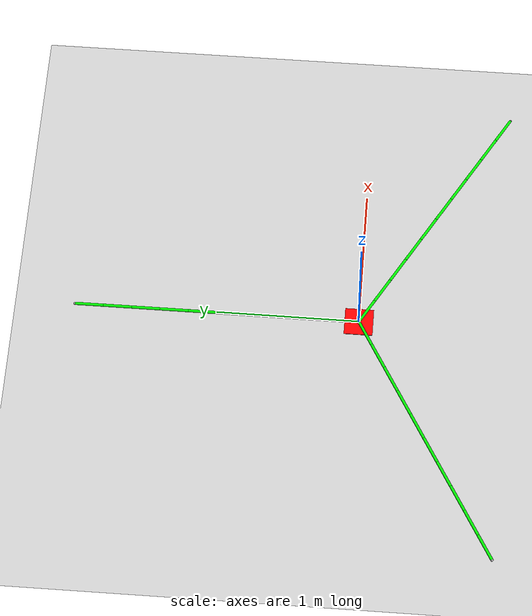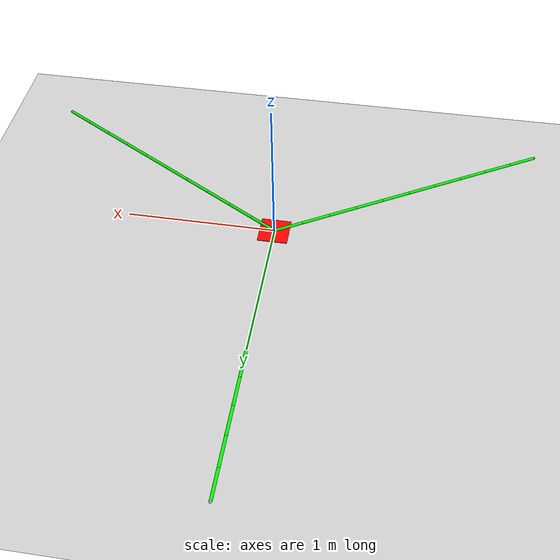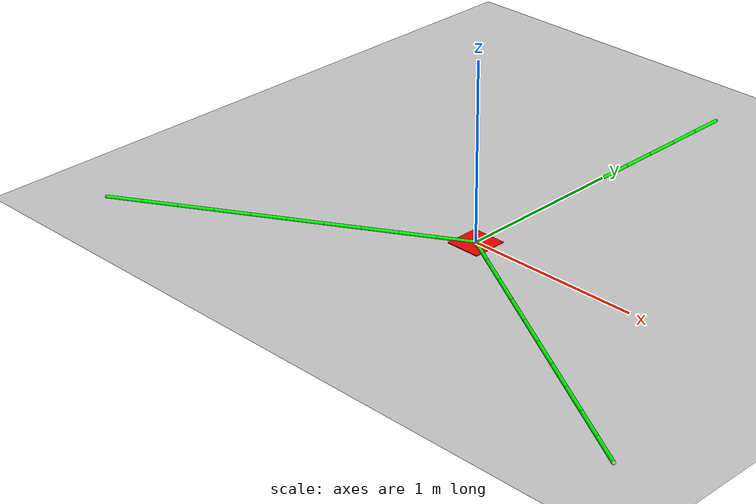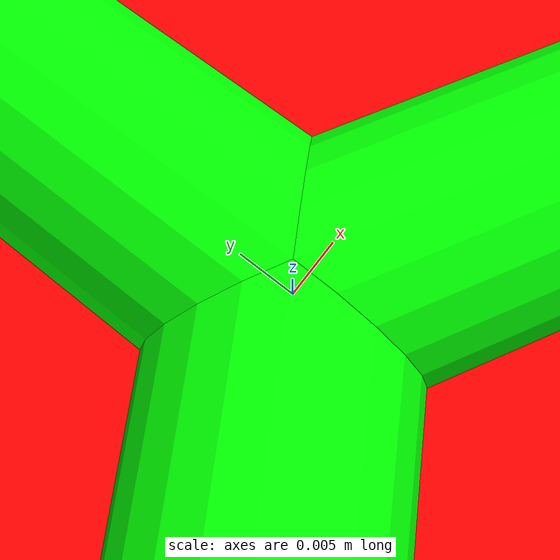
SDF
<sdf version="1.9">
 <world name="ideal_3dof_mqsls">
  <physics type="ode">
   <max_step_size>0.01</max_step_size>
   <real_time_factor>1.0</real_time_factor>
   <real_time_update_rate>250</real_time_update_rate>
  </physics>
  <plugin name="gz::sim::systems::Physics" filename="gz-sim-physics-system"/>
  <plugin name="gz::sim::systems::UserCommands" filename="gz-sim-user-commands-system"/>
  <plugin name="gz::sim::systems::SceneBroadcaster" filename="gz-sim-scene-broadcaster-system"/>
  <plugin name="gz::sim::systems::Contact" filename="gz-sim-contact-system"/>
  <plugin name="gz::sim::systems::Imu" filename="gz-sim-imu-system"/>
  <plugin name="gz::sim::systems::AirPressure" filename="gz-sim-air-pressure-system"/>
  <plugin name="gz::sim::systems::Sensors" filename="gz-sim-sensors-system">
   <render_engine>ogre2</render_engine>
  </plugin>
  <gravity>0 0 -9.8</gravity>
  <magnetic_field>6e-06 2.3e-05 -4.2e-05</magnetic_field>
  <atmosphere type="adiabatic"/>
  <scene>
   <grid>false</grid>
   <ambient>0.4 0.4 0.4 1</ambient>
   <background>0.7 0.7 0.7 1</background>
   <shadows>true</shadows>
  </scene>
  <model name="ground_plane">
   <static>true</static>
   <link name="link">
    <collision name="collision">
     <geometry><plane><normal>0 0 1</normal><size>1 1</size></plane></geometry>
    </collision>
    <visual name="visual">
     <geometry><plane><normal>0 0 1</normal><size>100 100</size></plane></geometry>
     <material>
      <ambient>0.8 0.8 0.8 1</ambient>
      <diffuse>0.8 0.8 0.8 1</diffuse>
      <specular>0.8 0.8 0.8 1</specular>
     </material>
    </visual>
    <inertial>
     <mass>1</mass>
     <inertia><ixx>1</ixx><ixy>0</ixy><ixz>0</ixz><iyy>1</iyy><iyz>0</iyz><izz>1</izz></inertia>
    </inertial>
   </link>
  </model>
  <plugin filename="virtual_wrench_plugin" name="virtual_wrench_plugin"/>
  <wind><linear_velocity>0 0 0</linear_velocity></wind>
  <plugin filename="gz-sim-wind-effects-system" name="gz::sim::systems::WindEffects">
   <force_approximation_scaling_factor>1</force_approximation_scaling_factor>
   <horizontal>
    <magnitude>
     <time_for_rise>10</time_for_rise>
     <sin><amplitude_percent>0.05</amplitude_percent><period>60</period></sin>
     <noise type="gaussian"><mean>0</mean><stddev>0.0002</stddev></noise>
    </magnitude>
    <direction>
     <time_for_rise>30</time_for_rise>
     <sin><amplitude>5</amplitude><period>20</period></sin>
     <noise type="gaussian"><mean>0</mean><stddev>0.03</stddev></noise>
    </direction>
   </horizontal>
   <vertical><noise type="gaussian"><mean>0</mean><stddev>0.03</stddev></noise></vertical>
  </plugin>
  <include><name>payload</name><uri>model://payload</uri></include>
  <include><name>rope_1</name><pose>0 0 0 0 0 1.570796326794897</pose><uri>model://rope</uri></include>
  <joint name="uav_joint1" type="fixed">
   <child>x500_1::base_link</child>
   <parent>rope_1::end_link</parent>
  </joint>
  <joint name="payload_joint1" type="fixed">
   <child>rope_1::begin_link</child>
   <parent>payload::base_link</parent>
  </joint>
  <include><name>rope_2</name><pose>0 0 0 0 0 -0.523598775598299</pose><uri>model://rope</uri></include>
  <include><name>rope_3</name><pose>0 0 0 0 0 -2.617993877991494</pose><uri>model://rope</uri></include>
  <joint name="uav_joint2" type="fixed">
   <child>x500_2::base_link</child>
   <parent>rope_2::end_link</parent>
  </joint>
  <joint name="uav_joint3" type="fixed">
   <child>x500_3::base_link</child>
   <parent>rope_3::end_link</parent>
  </joint>
  <joint name="payload_joint2" type="fixed">
   <child>rope_2::begin_link</child>
   <parent>payload::base_link</parent>
  </joint>
  <joint name="payload_joint3" type="fixed">
   <child>rope_3::begin_link</child>
   <parent>payload::base_link</parent>
  </joint>
  <light name="sunUTC" type="directional">
   <pose>0 0 500 0 -0 0</pose>
   <intensity>1</intensity>
   <direction>0.001 0.625 -0.78</direction>
   <diffuse>0.904 0.904 0.904 1</diffuse>
   <specular>0.271 0.271 0.271 1</specular>
   <attenuation><range>2000</range><linear>0</linear><constant>1</constant><quadratic>0</quadratic></attenuation>
   <spot><inner_angle>0</inner_angle><outer_angle>0</outer_angle><falloff>0</falloff></spot>
  </light>
 </world>
</sdf>

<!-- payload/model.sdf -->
<sdf version='1.9'>
  <model name="payload">
    <enable_wind>true</enable_wind>
    <link name="base_link">
      <pose>0 0 -0.1 0 0 0</pose>
      <collision name="base_link_collision">
        <geometry>
          <box>
          <size>0.2 0.2 0.2</size>
          </box>
        </geometry>
      </collision>
      <visual name="base_link_visual">
        <geometry>
          <box>
          <size>0.2 0.2 0.2</size>
          </box>
        </geometry>
        <material>
          <ambient>1 0 0 1</ambient> <!-- red -->
          <diffuse>1 0 0 1</diffuse>
          <specular>1 0 0 1</specular>
        </material>
      </visual>
      <inertial>
        <mass>0.5</mass> <!-- kg -->
        <inertia>
          <ixx>1/6*(0.2*0.2)</ixx>
          <iyy>1/6*(0.2*0.2)</iyy>
          <izz>1/6*(0.2*0.2)</izz>
        </inertia>
      </inertial>
    </link>
  </model>
</sdf>

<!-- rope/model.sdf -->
<sdf version='1.9'>
  <model name='rope'>
    <enable_wind>true</enable_wind>
    <static>false</static>
    <link name='begin_link'>
      <pose>0 0 0 0 0 0</pose>
      <inertial>
        <mass>0.001</mass>
        <inertia>
          <ixx>4.000000000000001e-08</ixx>
          <iyy>4.000000000000001e-08</iyy>
          <izz>4.000000000000001e-08</izz>
        </inertia>
      </inertial>
       <collision name='begin_link_collision'>
        <geometry>
          <sphere>
            <radius>0.01</radius>
          </sphere>
        </geometry>
      </collision>
      <visual name='begin_link_visual'>
        <geometry>
          <sphere>
            <radius>0.01</radius>
          </sphere>
        </geometry>
      </visual>
    </link>
    <link name='link_0'>
      <pose>0.1 0 0 0 1.570796326794896558 0</pose>
      <inertial>
        <mass>0.001</mass>
        <inertia>
          <ixx>0.0003358333333333334</ixx>
          <iyy>0.0003358333333333334</iyy>
          <izz>5e-06</izz>
        </inertia>
      </inertial>
       <collision name='link_0_collision'>
        <geometry>
          <cylinder>
            <length>0.2</length>
            <radius>0.01</radius>
          </cylinder>
        </geometry>
      </collision>
      <visual name='link_0_vis'>
        <geometry>
          <cylinder>
            <length>0.2</length>
            <radius>0.01</radius>
          </cylinder>
        </geometry>
        <material>
          <ambient>0 1 0 1</ambient> <!-- green -->
          <diffuse>0 1 0 1</diffuse>
          <specular>0 1 0 1</specular>
        </material>
      </visual>
      <velocity_decay>
        <linear>0.1</linear>
        <angular>0.1</angular>
      </velocity_decay>

    </link>
    <joint name='begin_joint_2' type='universal'>
      <pose relative_to='begin_link'/>
      <child>link_0</child>
      <parent>begin_link</parent>
      <axis>
        <xyz>1 0 0</xyz>
      </axis>
      <axis2>
        <xyz>0 1 0</xyz>
      </axis2>
    </joint>

    <link name='link_1'>
      <pose>0.30000000000000004 0 0 0 1.570796326794896558 0</pose>
      <inertial>
        <mass>0.001</mass>
        <inertia>
          <ixx>0.0003358333333333334</ixx>
          <iyy>0.0003358333333333334</iyy>
          <izz>5e-06</izz>
        </inertia>
      </inertial>
       <collision name='link_1_collision'>
        <geometry>
          <cylinder>
            <length>0.2</length>
            <radius>0.01</radius>
          </cylinder>
        </geometry>
      </collision>
      <visual name='link_1_vis'>
        <geometry>
          <cylinder>
            <length>0.2</length>
            <radius>0.01</radius>
          </cylinder>
        </geometry>
        <material>
          <ambient>0 1 0 1</ambient> <!-- green -->
          <diffuse>0 1 0 1</diffuse>
          <specular>0 1 0 1</specular>
        </material>
      </visual>
      <velocity_decay>
        <linear>0.1</linear>
        <angular>0.1</angular>
      </velocity_decay>

    </link>
    <joint name='joint_1_2' type='universal'>
      <pose relative_to='link_0'>0 0 0.1 0 0 0</pose>
      <child>link_1</child>
      <parent>link_0</parent>
      <axis>
        <xyz expressed_in='link_0'>1 0 0</xyz>
        <limit>
          <lower>-3.141592653589793</lower>
          <upper>3.141592653589793</upper>
          <effort>100</effort>
          <velocity>10</velocity>
        </limit>
        <dynamics>
          <damping>0.1</damping>
        </dynamics>
      </axis>
      <axis2>
        <xyz expressed_in='link_0'>0 1 0</xyz>
        <limit>
          <lower>-3.141592653589793</lower>
          <upper>3.141592653589793</upper>
          <effort>100</effort>
          <velocity>10</velocity>
        </limit>
        <dynamics>
          <damping>0.1</damping>
        </dynamics>
      </axis2>
    </joint>
    <link name='link_2'>
      <pose>0.5 0 0 0 1.570796326794896558 0</pose>
      <inertial>
        <mass>0.001</mass>
        <inertia>
          <ixx>0.0003358333333333334</ixx>
          <iyy>0.0003358333333333334</iyy>
          <izz>5e-06</izz>
        </inertia>
      </inertial>
       <collision name='link_2_collision'>
        <geometry>
          <cylinder>
            <length>0.2</length>
            <radius>0.01</radius>
          </cylinder>
        </geometry>
      </collision>
      <visual name='link_2_vis'>
        <geometry>
          <cylinder>
            <length>0.2</length>
            <radius>0.01</radius>
          </cylinder>
        </geometry>
        <material>
          <ambient>0 1 0 1</ambient> <!-- green -->
          <diffuse>0 1 0 1</diffuse>
          <specular>0 1 0 1</specular>
        </material>
      </visual>
      <velocity_decay>
        <linear>0.1</linear>
        <angular>0.1</angular>
      </velocity_decay>

    </link>
    <joint name='joint_2_2' type='universal'>
      <pose relative_to='link_1'>0 0 0.1 0 0 0</pose>
      <child>link_2</child>
      <parent>link_1</parent>
      <axis>
        <xyz expressed_in='link_1'>1 0 0</xyz>
        <limit>
          <lower>-3.141592653589793</lower>
          <upper>3.141592653589793</upper>
          <effort>100</effort>
          <velocity>10</velocity>
        </limit>
        <dynamics>
          <damping>0.1</damping>
        </dynamics>
      </axis>
      <axis2>
        <xyz expressed_in='link_1'>0 1 0</xyz>
        <limit>
          <lower>-3.141592653589793</lower>
          <upper>3.141592653589793</upper>
          <effort>100</effort>
          <velocity>10</velocity>
        </limit>
        <dynamics>
          <damping>0.1</damping>
        </dynamics>
      </axis2>
    </joint>
    <link name='link_3'>
      <pose>0.7000000000000001 0 0 0 1.570796326794896558 0</pose>
      <inertial>
        <mass>0.001</mass>
        <inertia>
          <ixx>0.0003358333333333334</ixx>
          <iyy>0.0003358333333333334</iyy>
          <izz>5e-06</izz>
        </inertia>
      </inertial>
       <collision name='link_3_collision'>
        <geometry>
          <cylinder>
            <length>0.2</length>
            <radius>0.01</radius>
          </cylinder>
        </geometry>
      </collision>
      <visual name='link_3_vis'>
        <geometry>
          <cylinder>
            <length>0.2</length>
            <radius>0.01</radius>
          </cylinder>
        </geometry>
        <material>
          <ambient>0 1 0 1</ambient> <!-- green -->
          <diffuse>0 1 0 1</diffuse>
          <specular>0 1 0 1</specular>
        </material>
      </visual>
      <velocity_decay>
        <linear>0.1</linear>
        <angular>0.1</angular>
      </velocity_decay>

    </link>
    <joint name='joint_3_2' type='universal'>
      <pose relative_to='link_2'>0 0 0.1 0 0 0</pose>
      <child>link_3</child>
      <parent>link_2</parent>
      <axis>
        <xyz expressed_in='link_2'>1 0 0</xyz>
        <limit>
          <lower>-3.141592653589793</lower>
          <upper>3.141592653589793</upper>
          <effort>100</effort>
          <velocity>10</velocity>
        </limit>
        <dynamics>
          <damping>0.1</damping>
        </dynamics>
      </axis>
      <axis2>
        <xyz expressed_in='link_2'>0 1 0</xyz>
        <limit>
          <lower>-3.141592653589793</lower>
          <upper>3.141592653589793</upper>
          <effort>100</effort>
          <velocity>10</velocity>
        </limit>
        <dynamics>
          <damping>0.1</damping>
        </dynamics>
      </axis2>
    </joint>
    <link name='link_4'>
      <pose>0.9 0 0 0 1.570796326794896558 0</pose>
      <inertial>
        <mass>0.001</mass>
        <inertia>
          <ixx>0.0003358333333333334</ixx>
          <iyy>0.0003358333333333334</iyy>
          <izz>5e-06</izz>
        </inertia>
      </inertial>
       <collision name='link_4_collision'>
        <geometry>
          <cylinder>
            <length>0.2</length>
            <radius>0.01</radius>
          </cylinder>
        </geometry>
      </collision>
      <visual name='link_4_vis'>
        <geometry>
          <cylinder>
            <length>0.2</length>
            <radius>0.01</radius>
          </cylinder>
        </geometry>
        <material>
          <ambient>0 1 0 1</ambient> <!-- green -->
          <diffuse>0 1 0 1</diffuse>
          <specular>0 1 0 1</specular>
        </material>
      </visual>
      <velocity_decay>
        <linear>0.1</linear>
        <angular>0.1</angular>
      </velocity_decay>

    </link>
    <joint name='joint_4_2' type='universal'>
      <pose relative_to='link_3'>0 0 0.1 0 0 0</pose>
      <child>link_4</child>
      <parent>link_3</parent>
      <axis>
        <xyz expressed_in='link_3'>1 0 0</xyz>
        <limit>
          <lower>-3.141592653589793</lower>
          <upper>3.141592653589793</upper>
          <effort>100</effort>
          <velocity>10</velocity>
        </limit>
        <dynamics>
          <damping>0.1</damping>
        </dynamics>
      </axis>
      <axis2>
        <xyz expressed_in='link_3'>0 1 0</xyz>
        <limit>
          <lower>-3.141592653589793</lower>
          <upper>3.141592653589793</upper>
          <effort>100</effort>
          <velocity>10</velocity>
        </limit>
        <dynamics>
          <damping>0.1</damping>
        </dynamics>
      </axis2>
    </joint>
    <link name='link_5'>
      <pose>1.1 0 0 0 1.570796326794896558 0</pose>
      <inertial>
        <mass>0.001</mass>
        <inertia>
          <ixx>0.0003358333333333334</ixx>
          <iyy>0.0003358333333333334</iyy>
          <izz>5e-06</izz>
        </inertia>
      </inertial>
       <collision name='link_5_collision'>
        <geometry>
          <cylinder>
            <length>0.2</length>
            <radius>0.01</radius>
          </cylinder>
        </geometry>
      </collision>
      <visual name='link_5_vis'>
        <geometry>
          <cylinder>
            <length>0.2</length>
            <radius>0.01</radius>
          </cylinder>
        </geometry>
        <material>
          <ambient>0 1 0 1</ambient> <!-- green -->
          <diffuse>0 1 0 1</diffuse>
          <specular>0 1 0 1</specular>
        </material>
      </visual>
      <velocity_decay>
        <linear>0.1</linear>
        <angular>0.1</angular>
      </velocity_decay>

      <sensor name="imu_sensor" type="imu">
        <always_on>1</always_on>
        <update_rate>250</update_rate>
        <visualize>true</visualize>
      </sensor>
    </link>
    <joint name='joint_5_2' type='universal'>
      <pose relative_to='link_4'>0 0 0.1 0 0 0</pose>
      <child>link_5</child>
      <parent>link_4</parent>
      <axis>
        <xyz expressed_in='link_4'>1 0 0</xyz>
        <limit>
          <lower>-3.141592653589793</lower>
          <upper>3.141592653589793</upper>
          <effort>100</effort>
          <velocity>10</velocity>
        </limit>
        <dynamics>
          <damping>0.1</damping>
        </dynamics>
      </axis>
      <axis2>
        <xyz expressed_in='link_4'>0 1 0</xyz>
        <limit>
          <lower>-3.141592653589793</lower>
          <upper>3.141592653589793</upper>
          <effort>100</effort>
          <velocity>10</velocity>
        </limit>
        <dynamics>
          <damping>0.1</damping>
        </dynamics>
      </axis2>
    </joint>
    <link name='link_6'>
      <pose>1.3000000000000003 0 0 0 1.570796326794896558 0</pose>
      <inertial>
        <mass>0.001</mass>
        <inertia>
          <ixx>0.0003358333333333334</ixx>
          <iyy>0.0003358333333333334</iyy>
          <izz>5e-06</izz>
        </inertia>
      </inertial>
       <collision name='link_6_collision'>
        <geometry>
          <cylinder>
            <length>0.2</length>
            <radius>0.01</radius>
          </cylinder>
        </geometry>
      </collision>
      <visual name='link_6_vis'>
        <geometry>
          <cylinder>
            <length>0.2</length>
            <radius>0.01</radius>
          </cylinder>
        </geometry>
        <material>
          <ambient>0 1 0 1</ambient> <!-- green -->
          <diffuse>0 1 0 1</diffuse>
          <specular>0 1 0 1</specular>
        </material>
      </visual>
      <velocity_decay>
        <linear>0.1</linear>
        <angular>0.1</angular>
      </velocity_decay>

    </link>
    <joint name='joint_6_2' type='universal'>
      <pose relative_to='link_5'>0 0 0.1 0 0 0</pose>
      <child>link_6</child>
      <parent>link_5</parent>
      <axis>
        <xyz expressed_in='link_5'>1 0 0</xyz>
        <limit>
          <lower>-3.141592653589793</lower>
          <upper>3.141592653589793</upper>
          <effort>100</effort>
          <velocity>10</velocity>
        </limit>
        <dynamics>
          <damping>0.1</damping>
        </dynamics>
      </axis>
      <axis2>
        <xyz expressed_in='link_5'>0 1 0</xyz>
        <limit>
          <lower>-3.141592653589793</lower>
          <upper>3.141592653589793</upper>
          <effort>100</effort>
          <velocity>10</velocity>
        </limit>
        <dynamics>
          <damping>0.1</damping>
        </dynamics>
      </axis2>
    </joint>
    <link name='link_7'>
      <pose>1.5000000000000002 0 0 0 1.570796326794896558 0</pose>
      <inertial>
        <mass>0.001</mass>
        <inertia>
          <ixx>0.0003358333333333334</ixx>
          <iyy>0.0003358333333333334</iyy>
          <izz>5e-06</izz>
        </inertia>
      </inertial>
       <collision name='link_7_collision'>
        <geometry>
          <cylinder>
            <length>0.2</length>
            <radius>0.01</radius>
          </cylinder>
        </geometry>
      </collision>
      <visual name='link_7_vis'>
        <geometry>
          <cylinder>
            <length>0.2</length>
            <radius>0.01</radius>
          </cylinder>
        </geometry>
        <material>
          <ambient>0 1 0 1</ambient> <!-- green -->
          <diffuse>0 1 0 1</diffuse>
          <specular>0 1 0 1</specular>
        </material>
      </visual>
      <velocity_decay>
        <linear>0.1</linear>
        <angular>0.1</angular>
      </velocity_decay>

    </link>
    <joint name='joint_7_2' type='universal'>
      <pose relative_to='link_6'>0 0 0.1 0 0 0</pose>
      <child>link_7</child>
      <parent>link_6</parent>
      <axis>
        <xyz expressed_in='link_6'>1 0 0</xyz>
        <limit>
          <lower>-3.141592653589793</lower>
          <upper>3.141592653589793</upper>
          <effort>100</effort>
          <velocity>10</velocity>
        </limit>
        <dynamics>
          <damping>0.1</damping>
        </dynamics>
      </axis>
      <axis2>
        <xyz expressed_in='link_6'>0 1 0</xyz>
        <limit>
          <lower>-3.141592653589793</lower>
          <upper>3.141592653589793</upper>
          <effort>100</effort>
          <velocity>10</velocity>
        </limit>
        <dynamics>
          <damping>0.1</damping>
        </dynamics>
      </axis2>
    </joint>
    <link name='link_8'>
      <pose>1.7000000000000002 0 0 0 1.570796326794896558 0</pose>
      <inertial>
        <mass>0.001</mass>
        <inertia>
          <ixx>0.0003358333333333334</ixx>
          <iyy>0.0003358333333333334</iyy>
          <izz>5e-06</izz>
        </inertia>
      </inertial>
       <collision name='link_8_collision'>
        <geometry>
          <cylinder>
            <length>0.2</length>
            <radius>0.01</radius>
          </cylinder>
        </geometry>
      </collision>
      <visual name='link_8_vis'>
        <geometry>
          <cylinder>
            <length>0.2</length>
            <radius>0.01</radius>
          </cylinder>
        </geometry>
        <material>
          <ambient>0 1 0 1</ambient> <!-- green -->
          <diffuse>0 1 0 1</diffuse>
          <specular>0 1 0 1</specular>
        </material>
      </visual>
      <velocity_decay>
        <linear>0.1</linear>
        <angular>0.1</angular>
      </velocity_decay>

    </link>
    <joint name='joint_8_2' type='universal'>
      <pose relative_to='link_7'>0 0 0.1 0 0 0</pose>
      <child>link_8</child>
      <parent>link_7</parent>
      <axis>
        <xyz expressed_in='link_7'>1 0 0</xyz>
        <limit>
          <lower>-3.141592653589793</lower>
          <upper>3.141592653589793</upper>
          <effort>100</effort>
          <velocity>10</velocity>
        </limit>
        <dynamics>
          <damping>0.1</damping>
        </dynamics>
      </axis>
      <axis2>
        <xyz expressed_in='link_7'>0 1 0</xyz>
        <limit>
          <lower>-3.141592653589793</lower>
          <upper>3.141592653589793</upper>
          <effort>100</effort>
          <velocity>10</velocity>
        </limit>
        <dynamics>
          <damping>0.1</damping>
        </dynamics>
      </axis2>
    </joint>
    <link name='link_9'>
      <pose>1.9000000000000001 0 0 0 1.570796326794896558 0</pose>
      <inertial>
        <mass>0.001</mass>
        <inertia>
          <ixx>0.0003358333333333334</ixx>
          <iyy>0.0003358333333333334</iyy>
          <izz>5e-06</izz>
        </inertia>
      </inertial>
       <collision name='link_9_collision'>
        <geometry>
          <cylinder>
            <length>0.2</length>
            <radius>0.01</radius>
          </cylinder>
        </geometry>
      </collision>
      <visual name='link_9_vis'>
        <geometry>
          <cylinder>
            <length>0.2</length>
            <radius>0.01</radius>
          </cylinder>
        </geometry>
        <material>
          <ambient>0 1 0 1</ambient> <!-- green -->
          <diffuse>0 1 0 1</diffuse>
          <specular>0 1 0 1</specular>
        </material>
      </visual>
      <velocity_decay>
        <linear>0.1</linear>
        <angular>0.1</angular>
      </velocity_decay>

    </link>
    <joint name='joint_9_2' type='universal'>
      <pose relative_to='link_8'>0 0 0.1 0 0 0</pose>
      <child>link_9</child>
      <parent>link_8</parent>
      <axis>
        <xyz expressed_in='link_8'>1 0 0</xyz>
        <limit>
          <lower>-3.141592653589793</lower>
          <upper>3.141592653589793</upper>
          <effort>100</effort>
          <velocity>10</velocity>
        </limit>
        <dynamics>
          <damping>0.1</damping>
        </dynamics>
      </axis>
      <axis2>
        <xyz expressed_in='link_8'>0 1 0</xyz>
        <limit>
          <lower>-3.141592653589793</lower>
          <upper>3.141592653589793</upper>
          <effort>100</effort>
          <velocity>10</velocity>
        </limit>
        <dynamics>
          <damping>0.1</damping>
        </dynamics>
      </axis2>
    </joint>
    <link name='end_link'>
      <pose>2 0 0 0 0 0</pose>
      <inertial>
        <mass>0.001</mass>
        <inertia>
          <ixx>4.000000000000001e-08</ixx>
          <iyy>4.000000000000001e-08</iyy>
          <izz>4.000000000000001e-08</izz>
        </inertia>
      </inertial>
       <collision name='end_link_collision'>
        <geometry>
          <sphere>
            <radius>0.01</radius>
          </sphere>
        </geometry>
      </collision>
      <visual name='end_link_visual'>
        <geometry>
          <sphere>
            <radius>0.01</radius>
          </sphere>
        </geometry>
      </visual>
    </link>
    <joint name='joint_end_1' type='universal'>
      <pose relative_to='end_link'/>
      <child>end_link</child>
      <parent>link_9</parent>
      <axis>
        <xyz>0 0 1</xyz>
      </axis>
      <axis2>
        <xyz>0 1 0</xyz>
      </axis2>
    </joint>
  </model>
</sdf>
